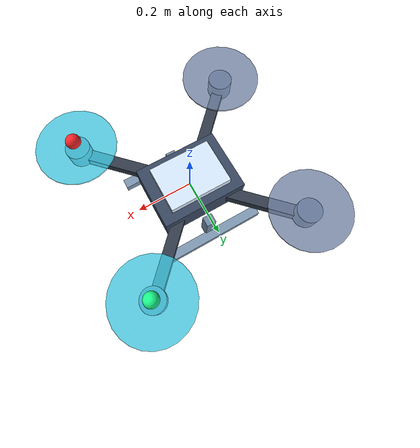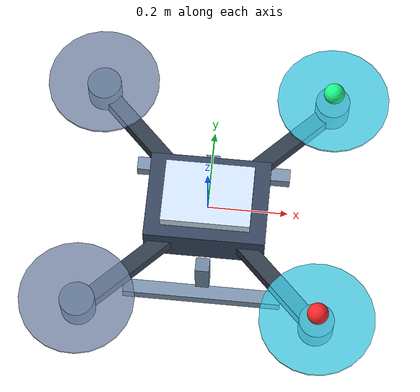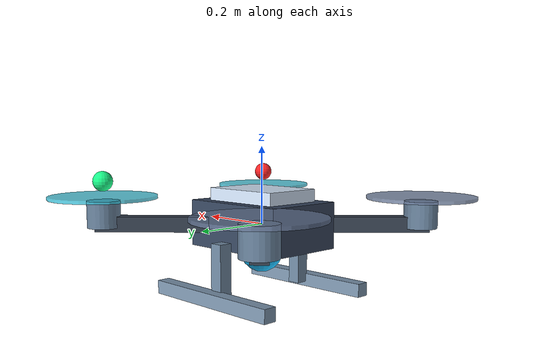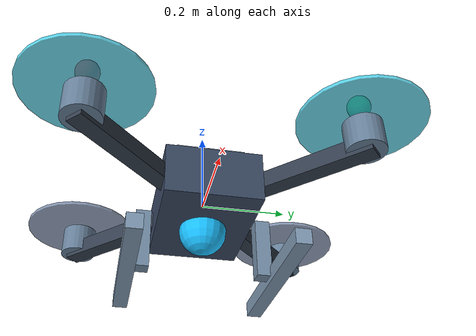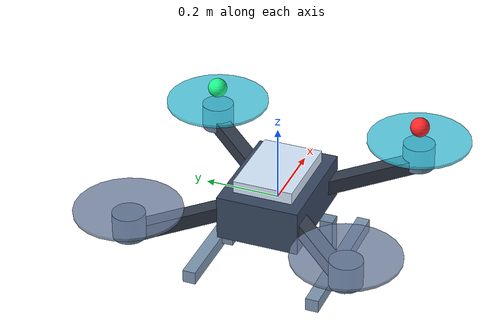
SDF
<?xml version="1.0"?>
<sdf version="1.9">
  <model name="drone_001">
    <static>false</static>
    <self_collide>false</self_collide>
    <!-- Reduced physics: Gazebo integrates commanded velocity; this model does
         not simulate motor thrust, aerodynamic lift, or an autopilot. -->
    <link name="base_link">
      <gravity>false</gravity>
      <inertial>
        <mass>1.2</mass>
        <inertia>
          <ixx>0.025</ixx><ixy>0</ixy><ixz>0</ixz>
          <iyy>0.025</iyy><iyz>0</iyz><izz>0.045</izz>
        </inertia>
      </inertial>
      <collision name="body_collision">
        <geometry><box><size>0.30 0.22 0.12</size></box></geometry>
      </collision>
      <collision name="left_skid_collision">
        <pose>0 0.17 -0.17 0 0 0</pose>
        <geometry><box><size>0.40 0.035 0.035</size></box></geometry>
      </collision>
      <collision name="right_skid_collision">
        <pose>0 -0.17 -0.17 0 0 0</pose>
        <geometry><box><size>0.40 0.035 0.035</size></box></geometry>
      </collision>
      <visual name="body">
        <geometry><box><size>0.30 0.22 0.12</size></box></geometry>
        <material>
          <ambient>0.14 0.19 0.27 1</ambient><diffuse>0.22 0.28 0.38 1</diffuse>
          <specular>0.5 0.6 0.7 1</specular>
        </material>
      </visual>
      <visual name="top_shell">
        <pose>0 0 0.07 0 0 0</pose>
        <geometry><box><size>0.22 0.16 0.045</size></box></geometry>
        <material><ambient>0.75 0.85 0.95 1</ambient><diffuse>0.85 0.92 1 1</diffuse></material>
      </visual>
      <visual name="arm_front_left_back_right">
        <pose>0 0 0 0 0 0.785398</pose>
        <geometry><box><size>0.86 0.04 0.04</size></box></geometry>
        <material><ambient>0.1 0.14 0.19 1</ambient><diffuse>0.2 0.24 0.3 1</diffuse></material>
      </visual>
      <visual name="arm_front_right_back_left">
        <pose>0 0 0 0 0 -0.785398</pose>
        <geometry><box><size>0.86 0.04 0.04</size></box></geometry>
        <material><ambient>0.1 0.14 0.19 1</ambient><diffuse>0.2 0.24 0.3 1</diffuse></material>
      </visual>
      <visual name="motor_front_left">
        <pose>0.29 0.29 0.025 0 0 0</pose>
        <geometry><cylinder><radius>0.043</radius><length>0.07</length></cylinder></geometry>
        <material><ambient>0.2 0.3 0.4 1</ambient><diffuse>0.4 0.5 0.6 1</diffuse></material>
      </visual>
      <visual name="motor_front_right">
        <pose>0.29 -0.29 0.025 0 0 0</pose>
        <geometry><cylinder><radius>0.043</radius><length>0.07</length></cylinder></geometry>
        <material><ambient>0.2 0.3 0.4 1</ambient><diffuse>0.4 0.5 0.6 1</diffuse></material>
      </visual>
      <visual name="motor_back_left">
        <pose>-0.29 0.29 0.025 0 0 0</pose>
        <geometry><cylinder><radius>0.043</radius><length>0.07</length></cylinder></geometry>
        <material><ambient>0.2 0.3 0.4 1</ambient><diffuse>0.4 0.5 0.6 1</diffuse></material>
      </visual>
      <visual name="motor_back_right">
        <pose>-0.29 -0.29 0.025 0 0 0</pose>
        <geometry><cylinder><radius>0.043</radius><length>0.07</length></cylinder></geometry>
        <material><ambient>0.2 0.3 0.4 1</ambient><diffuse>0.4 0.5 0.6 1</diffuse></material>
      </visual>
      <!-- Visible static rotor disks: no claim of simulated motor dynamics. -->
      <visual name="rotor_front_left">
        <pose>0.29 0.29 0.069 0 0 0.35</pose>
        <geometry><cylinder><radius>0.14</radius><length>0.008</length></cylinder></geometry>
        <material><ambient>0.2 0.75 0.85 1</ambient><diffuse>0.25 0.8 0.9 1</diffuse></material>
        <transparency>0.18</transparency>
      </visual>
      <visual name="rotor_front_right">
        <pose>0.29 -0.29 0.069 0 0 -0.35</pose>
        <geometry><cylinder><radius>0.14</radius><length>0.008</length></cylinder></geometry>
        <material><ambient>0.2 0.75 0.85 1</ambient><diffuse>0.25 0.8 0.9 1</diffuse></material>
        <transparency>0.18</transparency>
      </visual>
      <visual name="rotor_back_left">
        <pose>-0.29 0.29 0.069 0 0 -0.35</pose>
        <geometry><cylinder><radius>0.14</radius><length>0.008</length></cylinder></geometry>
        <material><ambient>0.32 0.4 0.5 1</ambient><diffuse>0.45 0.52 0.65 1</diffuse></material>
        <transparency>0.18</transparency>
      </visual>
      <visual name="rotor_back_right">
        <pose>-0.29 -0.29 0.069 0 0 0.35</pose>
        <geometry><cylinder><radius>0.14</radius><length>0.008</length></cylinder></geometry>
        <material><ambient>0.32 0.4 0.5 1</ambient><diffuse>0.45 0.52 0.65 1</diffuse></material>
        <transparency>0.18</transparency>
      </visual>
      <visual name="skid_left">
        <pose>0 0.17 -0.17 0 0 0</pose>
        <geometry><box><size>0.40 0.035 0.035</size></box></geometry>
        <material><ambient>0.35 0.45 0.55 1</ambient><diffuse>0.5 0.6 0.7 1</diffuse></material>
      </visual>
      <visual name="skid_right">
        <pose>0 -0.17 -0.17 0 0 0</pose>
        <geometry><box><size>0.40 0.035 0.035</size></box></geometry>
        <material><ambient>0.35 0.45 0.55 1</ambient><diffuse>0.5 0.6 0.7 1</diffuse></material>
      </visual>
      <visual name="leg_left">
        <pose>0 0.14 -0.105 0 0 0</pose>
        <geometry><box><size>0.035 0.035 0.14</size></box></geometry>
        <material><ambient>0.3 0.4 0.5 1</ambient><diffuse>0.45 0.55 0.65 1</diffuse></material>
      </visual>
      <visual name="leg_right">
        <pose>0 -0.14 -0.105 0 0 0</pose>
        <geometry><box><size>0.035 0.035 0.14</size></box></geometry>
        <material><ambient>0.3 0.4 0.5 1</ambient><diffuse>0.45 0.55 0.65 1</diffuse></material>
      </visual>
      <visual name="navigation_light_left">
        <pose>0.29 0.29 0.11 0 0 0</pose>
        <geometry><sphere><radius>0.026</radius></sphere></geometry>
        <material><diffuse>0.1 1 0.55 1</diffuse><emissive>0.1 1 0.55 1</emissive></material>
      </visual>
      <visual name="navigation_light_right">
        <pose>0.29 -0.29 0.11 0 0 0</pose>
        <geometry><sphere><radius>0.026</radius></sphere></geometry>
        <material><diffuse>1 0.15 0.16 1</diffuse><emissive>1 0.15 0.16 1</emissive></material>
      </visual>
      <visual name="show_light">
        <pose>0 0 -0.07 0 0 0</pose>
        <geometry><sphere><radius>0.055</radius></sphere></geometry>
        <material><diffuse>0.1 0.75 1 1</diffuse><emissive>0.15 0.8 1 1</emissive></material>
      </visual>
    </link>
    <plugin filename="gz-sim-velocity-control-system" name="gz::sim::systems::VelocityControl">
      <topic>/model/drone_001/cmd_vel</topic>
      <initial_linear>0 0 0</initial_linear>
      <initial_angular>0 0 0</initial_angular>
    </plugin>
    <plugin filename="gz-sim-odometry-publisher-system" name="gz::sim::systems::OdometryPublisher">
      <dimensions>3</dimensions>
      <odom_frame>world</odom_frame>
      <robot_base_frame>drone_001/base_link</robot_base_frame>
      <odom_topic>/model/drone_001/odometry</odom_topic>
      <odom_publish_frequency>30</odom_publish_frequency>
    </plugin>
  </model>
</sdf>
